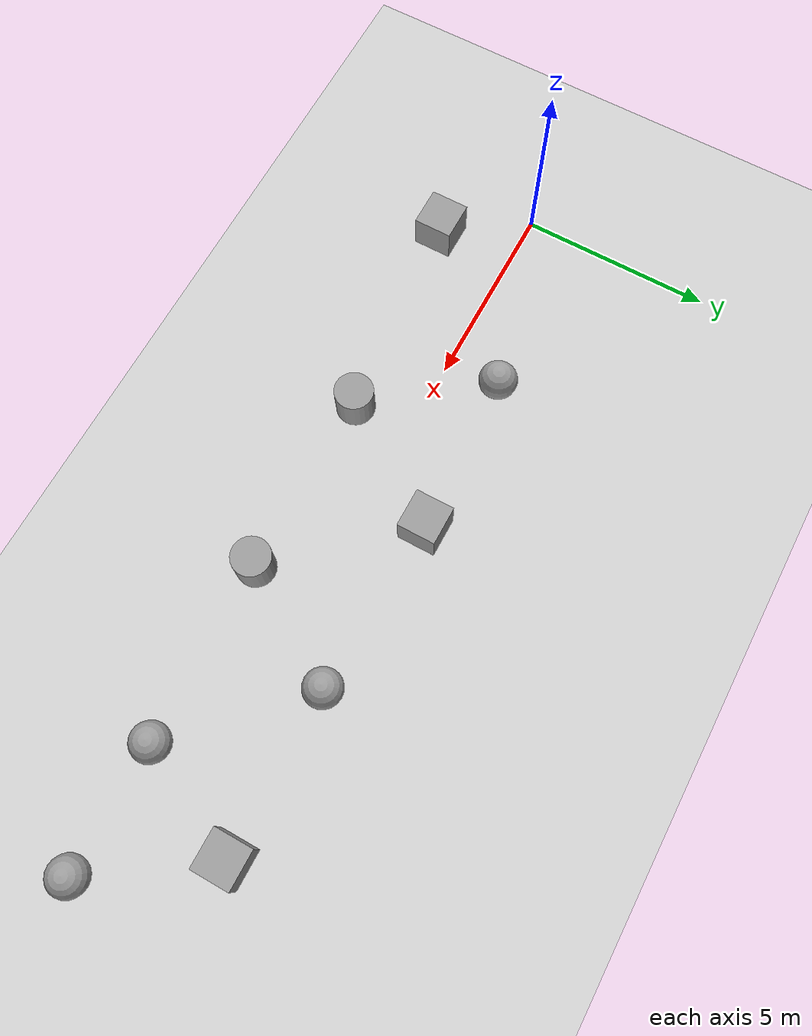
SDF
<sdf version="1.6">
 <world name="default">
  <light name="sun" type="directional">
   <pose>0 0 10 0 -0 0</pose>
   <diffuse>0.8 0.8 0.8 1</diffuse>
   <specular>0.2 0.2 0.2 1</specular>
   <attenuation>
    <range>1000</range>
    <constant>0.9</constant>
    <linear>0.01</linear>
    <quadratic>0.001</quadratic>
   </attenuation>
   <direction>-0.5 0.1 -0.9</direction>
  </light>
  <model name="ground_plane">
   <static>1</static>
   <link name="link">
    <collision name="collision">
     <geometry><plane><normal>0 0 1</normal><size>100 100</size></plane></geometry>
     <surface>
      <contact><collide_bitmask>65535</collide_bitmask></contact>
      <friction><ode><mu>100</mu><mu2>50</mu2></ode></friction>
     </surface>
    </collision>
    <visual name="visual">
     <cast_shadows>0</cast_shadows>
     <geometry><plane><normal>0 0 1</normal><size>100 100</size></plane></geometry>
     <material>
      <script><uri>file://media/materials/scripts/gazebo.material</uri><name>Gazebo/Grey</name></script>
     </material>
    </visual>
   </link>
  </model>
  <gravity>0 0 -9.8</gravity>
  <magnetic_field>6e-06 2.3e-05 -4.2e-05</magnetic_field>
  <atmosphere type="adiabatic"/>
  <physics name="default_physics" default="0" type="ode">
   <max_step_size>0.001</max_step_size>
   <real_time_factor>1</real_time_factor>
   <real_time_update_rate>1000</real_time_update_rate>
  </physics>
  <scene><ambient>0.4 0.4 0.4 1</ambient><background>0.7 0.7 0.7 1</background><shadows>1</shadows></scene>
  <audio><device>default</device></audio>
  <spherical_coordinates>
   <surface_model>EARTH_WGS84</surface_model>
   <latitude_deg>0</latitude_deg>
   <longitude_deg>0</longitude_deg>
   <elevation>0</elevation>
   <heading_deg>0</heading_deg>
  </spherical_coordinates>
  <model name="unit_box">
   <pose>1.45931 -2.01403 0.499995 0 1e-05 0</pose>
   <link name="link">
    <inertial>
     <mass>1</mass>
     <inertia>
      <ixx>0.166667</ixx>
      <ixy>0</ixy>
      <ixz>0</ixz>
      <iyy>0.166667</iyy>
      <iyz>0</iyz>
      <izz>0.166667</izz>
     </inertia>
    </inertial>
    <collision name="collision"><geometry><box><size>1 1 1</size></box></geometry></collision>
    <visual name="visual">
     <geometry><box><size>1 1 1</size></box></geometry>
     <material>
      <script><name>Gazebo/Grey</name><uri>file://media/materials/scripts/gazebo.material</uri></script>
     </material>
    </visual>
   </link>
  </model>
  <model name="unit_sphere">
   <pose>4.79599 1.40358 0.5 0 -0 0</pose>
   <link name="link">
    <inertial>
     <mass>1</mass>
     <inertia><ixx>0.1</ixx><ixy>0</ixy><ixz>0</ixz><iyy>0.1</iyy><iyz>0</iyz><izz>0.1</izz></inertia>
    </inertial>
    <collision name="collision"><geometry><sphere><radius>0.5</radius></sphere></geometry></collision>
    <visual name="visual">
     <geometry><sphere><radius>0.5</radius></sphere></geometry>
     <material>
      <script><name>Gazebo/Grey</name><uri>file://media/materials/scripts/gazebo.material</uri></script>
     </material>
    </visual>
   </link>
  </model>
  <model name="unit_cylinder">
   <pose>6.97808 -1.51819 0.499992 -3e-06 4e-06 0</pose>
   <link name="link">
    <inertial>
     <mass>1</mass>
     <inertia><ixx>0.145833</ixx><ixy>0</ixy><ixz>0</ixz><iyy>0.145833</iyy><iyz>0</iyz><izz>0.125</izz></inertia>
    </inertial>
    <collision name="collision">
     <geometry><cylinder><radius>0.5</radius><length>1</length></cylinder></geometry>
    </collision>
    <visual name="visual">
     <geometry><cylinder><radius>0.5</radius><length>1</length></cylinder></geometry>
     <material>
      <script><name>Gazebo/Grey</name><uri>file://media/materials/scripts/gazebo.material</uri></script>
     </material>
    </visual>
   </link>
  </model>
  <model name="unit_box_0">
   <pose>9.00025 1.58428 0.499995 -1e-05 -0 -0</pose>
   <link name="link">
    <inertial>
     <mass>1</mass>
     <inertia>
      <ixx>0.166667</ixx>
      <ixy>0</ixy>
      <ixz>0</ixz>
      <iyy>0.166667</iyy>
      <iyz>0</iyz>
      <izz>0.166667</izz>
     </inertia>
    </inertial>
    <collision name="collision"><geometry><box><size>1 1 1</size></box></geometry></collision>
    <visual name="visual">
     <geometry><box><size>1 1 1</size></box></geometry>
     <material>
      <script><name>Gazebo/Grey</name><uri>file://media/materials/scripts/gazebo.material</uri></script>
     </material>
    </visual>
   </link>
  </model>
  <model name="unit_cylinder_0">
   <pose>11.8082 -1.54117 0.499992 -3e-06 -4e-06 -0</pose>
   <link name="link">
    <inertial>
     <mass>1</mass>
     <inertia><ixx>0.145833</ixx><ixy>0</ixy><ixz>0</ixz><iyy>0.145833</iyy><iyz>0</iyz><izz>0.125</izz></inertia>
    </inertial>
    <collision name="collision">
     <geometry><cylinder><radius>0.5</radius><length>1</length></cylinder></geometry>
    </collision>
    <visual name="visual">
     <geometry><cylinder><radius>0.5</radius><length>1</length></cylinder></geometry>
     <material>
      <script><name>Gazebo/Grey</name><uri>file://media/materials/scripts/gazebo.material</uri></script>
     </material>
    </visual>
   </link>
  </model>
  <model name="unit_sphere_0">
   <pose>13.6038 1.40536 0.5 0 -0 0</pose>
   <link name="link">
    <inertial>
     <mass>1</mass>
     <inertia><ixx>0.1</ixx><ixy>0</ixy><ixz>0</ixz><iyy>0.1</iyy><iyz>0</iyz><izz>0.1</izz></inertia>
    </inertial>
    <collision name="collision"><geometry><sphere><radius>0.5</radius></sphere></geometry></collision>
    <visual name="visual">
     <geometry><sphere><radius>0.5</radius></sphere></geometry>
     <material>
      <script><name>Gazebo/Grey</name><uri>file://media/materials/scripts/gazebo.material</uri></script>
     </material>
    </visual>
   </link>
  </model>
  <model name="unit_sphere_1">
   <pose>16.5026 -1.39776 0.5 0 -0 0</pose>
   <link name="link">
    <inertial>
     <mass>1</mass>
     <inertia><ixx>0.1</ixx><ixy>0</ixy><ixz>0</ixz><iyy>0.1</iyy><iyz>0</iyz><izz>0.1</izz></inertia>
    </inertial>
    <collision name="collision"><geometry><sphere><radius>0.5</radius></sphere></geometry></collision>
    <visual name="visual">
     <geometry><sphere><radius>0.5</radius></sphere></geometry>
     <material>
      <script><name>Gazebo/Grey</name><uri>file://media/materials/scripts/gazebo.material</uri></script>
     </material>
    </visual>
   </link>
  </model>
  <model name="unit_box_1">
   <pose>17.8138 1.40292 0.499995 -1e-05 -0 0</pose>
   <link name="link">
    <inertial>
     <mass>1</mass>
     <inertia>
      <ixx>0.166667</ixx>
      <ixy>0</ixy>
      <ixz>0</ixz>
      <iyy>0.166667</iyy>
      <iyz>0</iyz>
      <izz>0.166667</izz>
     </inertia>
    </inertial>
    <collision name="collision"><geometry><box><size>1 1 1</size></box></geometry></collision>
    <visual name="visual">
     <geometry><box><size>1 1 1</size></box></geometry>
     <material>
      <script><name>Gazebo/Grey</name><uri>file://media/materials/scripts/gazebo.material</uri></script>
     </material>
    </visual>
   </link>
  </model>
  <model name="unit_sphere_2">
   <pose>19.7335 -1.40534 0.5 0 -0 0</pose>
   <link name="link">
    <inertial>
     <mass>1</mass>
     <inertia><ixx>0.1</ixx><ixy>0</ixy><ixz>0</ixz><iyy>0.1</iyy><iyz>0</iyz><izz>0.1</izz></inertia>
    </inertial>
    <collision name="collision"><geometry><sphere><radius>0.5</radius></sphere></geometry></collision>
    <visual name="visual">
     <geometry><sphere><radius>0.5</radius></sphere></geometry>
     <material>
      <script><name>Gazebo/Grey</name><uri>file://media/materials/scripts/gazebo.material</uri></script>
     </material>
    </visual>
   </link>
  </model>
 </world>
</sdf>
